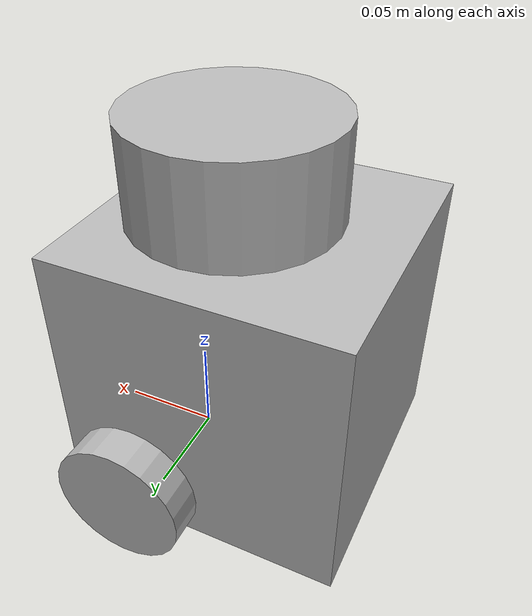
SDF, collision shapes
<?xml version="1.0" ?>
<sdf version="1.5">

  <model name="turtlebot3_burger">

    <pose>0.0 0.0 0.0 0.0 0.0 0.0</pose>

    <link name="base_footprint"/>

    <link name="base_link">

      <inertial>
        <pose>-0.032 0 0.070 0 0 0</pose>
        <inertia>
          <ixx>7.2397393e-01</ixx>
          <ixy>4.686399e-10</ixy>
          <ixz>-1.09525703e-08</ixz>
          <iyy>7.2397393e-01</iyy>
          <iyz>2.8582649e-09</iyz>
          <izz>6.53050163e-01</izz>
        </inertia>
        <mass>8.2573504e-01</mass>
      </inertial>

      <collision name="base_collision">
        <pose>-0.032 0 0.070 0 0 0</pose>
        <geometry>
          <box>
            <size>0.140 0.140 0.140</size>
          </box>
        </geometry>
      </collision>

      <visual name="base_visual">
        <pose>-0.032 0 0 0 0 0</pose>
        <geometry>

          <mesh>
            <uri>model://turtlebot3_burger/meshes/burger_base.dae</uri>
            <scale>0.001 0.001 0.001</scale>
          </mesh>
        </geometry>
      </visual>
    </link>

    <link name="imu_link">
      <sensor name="tb3_imu" type="imu">
        <always_on>true</always_on>
        <update_rate>200</update_rate>
        <imu>
          <angular_velocity>
            <x>
              <noise type="gaussian">
                <mean>0.0</mean>
                <stddev>2e-4</stddev>
              </noise>
            </x>
            <y>
              <noise type="gaussian">
                <mean>0.0</mean>
                <stddev>2e-4</stddev>
              </noise>
            </y>
            <z>
              <noise type="gaussian">
                <mean>0.0</mean>
                <stddev>2e-4</stddev>
              </noise>
            </z>
          </angular_velocity>
          <linear_acceleration>
            <x>
              <noise type="gaussian">
                <mean>0.0</mean>
                <stddev>1.7e-2</stddev>
              </noise>
            </x>
            <y>
              <noise type="gaussian">
                <mean>0.0</mean>
                <stddev>1.7e-2</stddev>
              </noise>
            </y>
            <z>
              <noise type="gaussian">
                <mean>0.0</mean>
                <stddev>1.7e-2</stddev>
              </noise>
            </z>
          </linear_acceleration>
        </imu>
        <plugin name="turtlebot3_imu" filename="libgazebo_ros_imu_sensor.so">
          <ros>
            <remapping>~/out:=imu</remapping>
          </ros>
        </plugin>
      </sensor>
    </link>

    <link name="base_scan">
      <inertial>
        <pose>-0.020 0 0.161 0 0 0</pose>
        <inertia>
          <ixx>0.001</ixx>
          <ixy>0.000</ixy>
          <ixz>0.000</ixz>
          <iyy>0.001</iyy>
          <iyz>0.000</iyz>
          <izz>0.001</izz>
        </inertia>
        <mass>0.114</mass>
      </inertial>

    <!--add-->
      <collision name="lidar_sensor_collision">
        <pose>-0.020 0 0.161 0 0 0</pose>
        <geometry>
          <cylinder>
            <radius>0.0508</radius>
            <length>0.055</length>
          </cylinder>
        </geometry>
      </collision>

      <visual name="lidar_sensor_visual">
        <pose>-0.032 0 0.171 0 0 0</pose>
        <geometry>
           <mesh>
            <uri>model://turtlebot3_burger/meshes/lds.dae</uri>
            <scale>0.001 0.001 0.001</scale>
          </mesh>
        </geometry>
      </visual>

      <sensor name="hls_lfcd_lds" type="ray">
        <pose>-0.032 0 0.171 0 0 0</pose>
        <visualize>true</visualize>
        <update_rate>1</update_rate>
        <ray>
          <scan>
            <horizontal>
              <samples>72</samples>
              <resolution>1</resolution>
              <min_angle>0.000000</min_angle>
              <max_angle>6.280000</max_angle>
            </horizontal>
          </scan>
          <range>
            <min>0.12</min>
            <max>1.5</max>
            <resolution>0.02</resolution>
          </range>
        </ray>
        <plugin name="turtlebot3_laserscan" filename="libgazebo_ros_ray_sensor.so">
          <ros>
            <remapping>~/out:=scan</remapping>
          </ros>
          <output_type>sensor_msgs/LaserScan</output_type>
          <frame_name>base_scan</frame_name>
        </plugin>
      </sensor>
    <!--addend-->
    </link>

    <link name="wheel_left_link">

      <inertial>
        <pose>0 0.08 0.023 -1.57 0 0</pose>
        <inertia>
          <ixx>1.8158194e-03</ixx>
          <ixy>-9.3392e-12</ixy>
          <ixz>1.04909e-11</ixz>
          <iyy>3.2922126e-03</iyy>
          <iyz>5.75694e-11</iyz>
          <izz>1.8158194e-03</izz>
        </inertia>
        <mass>2.8498940e-02</mass>
      </inertial>

      <collision name="wheel_left_collision">
        <pose>0 0.08 0.023 -1.57 0 0</pose>
        <geometry>
          <cylinder>
            <radius>0.033</radius>
            <length>0.018</length>
          </cylinder>
        </geometry>
        <surface>
          <!-- This friction pamareter don't contain reliable data!! -->
          <friction>
            <ode>
              <mu>100000.0</mu>
              <mu2>100000.0</mu2>
              <fdir1>0 0 0</fdir1>
              <slip1>0.0</slip1>
              <slip2>0.0</slip2>
            </ode>
          </friction>
          <contact>
            <ode>
              <soft_cfm>0</soft_cfm>
              <soft_erp>0.2</soft_erp>
              <kp>1e+5</kp>
              <kd>1</kd>
              <max_vel>0.01</max_vel>
              <min_depth>0.001</min_depth>
            </ode>
          </contact>
        </surface>
      </collision>

      <visual name="wheel_left_visual">
        <pose>0 0.08 0.023 0 0 0</pose>
        <geometry>
          <mesh>
            <uri>model://turtlebot3_burger/meshes/tire.dae</uri>
            <scale>0.001 0.001 0.001</scale>
          </mesh>
        </geometry>
      </visual>
    </link>

    <link name="wheel_right_link">

      <inertial>
        <pose>0.0 -0.08 0.023 -1.57 0 0</pose>
        <inertia>
          <ixx>1.8158194e-03</ixx>
          <ixy>-9.3392e-12</ixy>
          <ixz>1.04909e-11</ixz>
          <iyy>3.2922126e-03</iyy>
          <iyz>5.75694e-11</iyz>
          <izz>1.8158194e-03</izz>
        </inertia>
        <mass>2.8498940e-02</mass>
      </inertial>

      <collision name="wheel_right_collision">
        <pose>0.0 -0.08 0.023 -1.57 0 0</pose>
        <geometry>
          <cylinder>
            <radius>0.033</radius>
            <length>0.018</length>
          </cylinder>
        </geometry>
        <surface>
          <!-- This friction pamareter don't contain reliable data!! -->
          <friction>
            <ode>
              <mu>100000.0</mu>
              <mu2>100000.0</mu2>
              <fdir1>0 0 0</fdir1>
              <slip1>0.0</slip1>
              <slip2>0.0</slip2>
            </ode>
          </friction>
          <contact>
            <ode>
              <soft_cfm>0</soft_cfm>
              <soft_erp>0.2</soft_erp>
              <kp>1e+5</kp>
              <kd>1</kd>
              <max_vel>0.01</max_vel>
              <min_depth>0.001</min_depth>
            </ode>
          </contact>
        </surface>
      </collision>

      <visual name="wheel_right_visual">
        <pose>0.0 -0.08 0.023 0 0 0</pose>
        <geometry>
          <mesh>
            <uri>model://turtlebot3_burger/meshes/tire.dae</uri>
            <scale>0.001 0.001 0.001</scale>
          </mesh>
        </geometry>
      </visual>
    </link>

    <link name='caster_back_link'>
      <pose>-0.081 0 -0.004 -1.57 0 0</pose>
      <inertial>
        <mass>0.005</mass>
        <inertia>
          <ixx>0.001</ixx>
          <ixy>0.000</ixy>
          <ixz>0.000</ixz>
          <iyy>0.001</iyy>
          <iyz>0.000</iyz>
          <izz>0.001</izz>
        </inertia>
      </inertial>
      <collision name='collision'>
        <geometry>
          <sphere>
            <radius>0.005000</radius>
          </sphere>
        </geometry>
        <surface>
          <contact>
            <ode>
              <soft_cfm>0</soft_cfm>
              <soft_erp>0.2</soft_erp>
              <kp>1e+5</kp>
              <kd>1</kd>
              <max_vel>0.01</max_vel>
              <min_depth>0.001</min_depth>
            </ode>
          </contact>
        </surface>
      </collision>
    </link>

    <!--add-->
    <!--addend-->

    <joint name="base_joint" type="fixed">
      <parent>base_footprint</parent>
      <child>base_link</child>
      <pose>0.0 0.0 0.010 0 0 0</pose>
    </joint>

    <joint name="wheel_left_joint" type="revolute">
      <parent>base_link</parent>
      <child>wheel_left_link</child>
      <pose>0.0 0.08 0.023 -1.57 0 0</pose>
      <axis>
        <xyz>0 0 1</xyz>
      </axis>
    </joint>

    <joint name="wheel_right_joint" type="revolute">
      <parent>base_link</parent>
      <child>wheel_right_link</child>
      <pose>0.0 -0.08 0.023 -1.57 0 0</pose>
      <axis>
        <xyz>0 0 1</xyz>
      </axis>
    </joint>

    <joint name='caster_back_joint' type='ball'>
      <parent>base_link</parent>
      <child>caster_back_link</child>
    </joint>

    <joint name="imu_joint" type="fixed">
      <parent>base_link</parent>
      <child>imu_link</child>
      <pose>-0.032 0 0.068 0 0 0</pose>
      <axis>
        <xyz>0 0 1</xyz>
      </axis>
    </joint>

    <!--add-->

    <joint name="lidar_joint" type="fixed">
      <parent>base_link</parent>
      <child>base_scan</child>
      <pose>-0.032 0 0.171 0 0 0</pose>
      <axis>
        <xyz>0 0 1</xyz>
      </axis>
    </joint>

    <plugin name="turtlebot3_diff_drive" filename="libgazebo_ros_diff_drive.so">

      <ros>
      </ros>

      <update_rate>30</update_rate>

      <!-- wheels -->
      <left_joint>wheel_left_joint</left_joint>
      <right_joint>wheel_right_joint</right_joint>

      <!-- kinematics -->
      <wheel_separation>0.160</wheel_separation>
      <wheel_diameter>0.066</wheel_diameter>

      <!-- limits -->
      <max_wheel_torque>20</max_wheel_torque>
      <max_wheel_acceleration>1.0</max_wheel_acceleration>

      <command_topic>cmd_vel</command_topic>

      <!-- output -->
      <publish_odom>true</publish_odom>
      <publish_odom_tf>true</publish_odom_tf>
      <publish_wheel_tf>false</publish_wheel_tf>

      <odometry_topic>odom</odometry_topic>
      <odometry_frame>odom</odometry_frame>
      <robot_base_frame>base_footprint</robot_base_frame>

    </plugin>

    <plugin name="turtlebot3_joint_state" filename="libgazebo_ros_joint_state_publisher.so">
      <ros>
        <remapping>~/out:=joint_states</remapping>
      </ros>
      <update_rate>30</update_rate>
      <joint_name>wheel_left_joint</joint_name>
      <joint_name>wheel_right_joint</joint_name>
    </plugin>

  </model>

</sdf>
